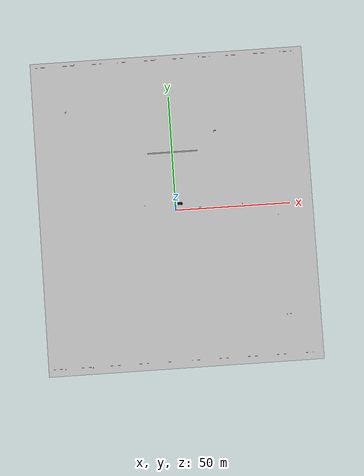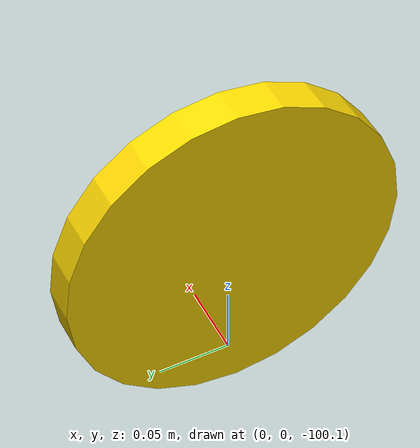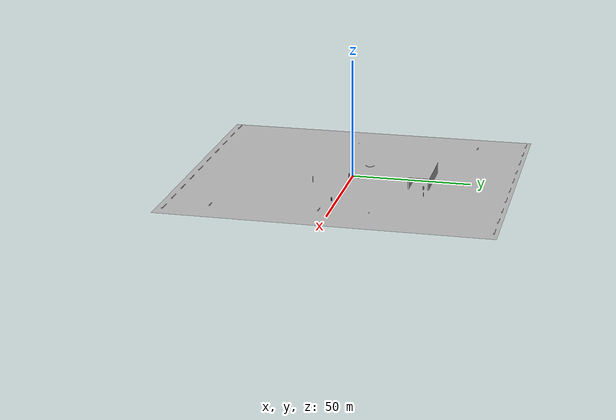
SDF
<sdf version="1.6">
 <world name="robotaksi_world">
  <plugin filename="libignition-gazebo-physics-system.so" name="ignition::gazebo::systems::Physics"/>
  <plugin filename="libignition-gazebo-user-commands-system.so" name="ignition::gazebo::systems::UserCommands"/>
  <plugin filename="libignition-gazebo-scene-broadcaster-system.so" name="ignition::gazebo::systems::SceneBroadcaster"/>
  <light type="directional" name="sun">
   <pose>0 0 10 0 0 0</pose>
   <diffuse>0.8 0.8 0.8 1</diffuse>
   <specular>0.2 0.2 0.2 1</specular>
   <direction>-0.5 0.1 -0.9</direction>
  </light>
  <model name="invisible_ground">
   <static>true</static>
   <pose>0 0 -0.01 0 0 0</pose>
   <link name="link">
    <collision name="collision"><geometry><box><size>2000 2000 0.01</size></box></geometry></collision>
   </link>
  </model>
  <include><uri>model://robotaksi_map</uri></include>
  <include>
   <uri>model://durak_sign</uri>
   <name>durak_1</name>
   <pose>29.0746 0.795691 0.0575 0 0 1.54575</pose>
  </include>
  <include><uri>model://durak_sign</uri><name>durak_2</name><pose>48.4687 16.9535 0.0575 0 0 0</pose></include>
  <include><uri>model://durak_sign</uri><name>durak_3</name><pose>11.4296 -14.644 0.0575 0 0 0</pose></include>
  <include><uri>model://traffic_light</uri><name>tl_1</name><pose>10.7719 0.6677 0 0 0 3.14159</pose></include>
  <include><uri>model://tl_lamp_red</uri><name>tl1_red</name><pose>10.0219 0.6677 4.30 0 0 0</pose></include>
  <include><uri>model://tl_lamp_yellow</uri><name>tl1_yellow</name><pose>0 0 -100 0 0 0</pose></include>
  <include><uri>model://tl_lamp_green</uri><name>tl1_green</name><pose>0 0 -100 0 0 0</pose></include>
  <include><uri>model://traffic_light</uri><name>tl_2</name><pose>18.8216 33.5324 0 0 0 0</pose></include>
  <include><uri>model://tl_lamp_red</uri><name>tl2_red</name><pose>19.5716 33.5324 4.30 0 0 0</pose></include>
  <include><uri>model://tl_lamp_yellow</uri><name>tl2_yellow</name><pose>0 0 -100 0 0 0</pose></include>
  <include><uri>model://tl_lamp_green</uri><name>tl2_green</name><pose>0 0 -100 0 0 0</pose></include>
  <include><uri>model://traffic_light</uri><name>tl_3</name><pose>40.6710 0.0121 0 0 0 3.14159</pose></include>
  <include><uri>model://tl_lamp_red</uri><name>tl3_red</name><pose>39.9210 0.0121 4.30 0 0 0</pose></include>
  <include><uri>model://tl_lamp_yellow</uri><name>tl3_yellow</name><pose>0 0 -100 0 0 0</pose></include>
  <include><uri>model://tl_lamp_green</uri><name>tl3_green</name><pose>0 0 -100 0 0 0</pose></include>
  <model name="my_robot">
   <pose>2.0 3.0 0.15 0 0 0</pose>
   <link name="base_footprint">
    <inertial>
     <pose>0.0003793929712460063 0 0.3672963258785942 0 0 0</pose>
     <mass>500.80000000000001</mass>
     <inertia>
      <ixx>71.232659225239615</ixx>
      <ixy>0</ixy>
      <ixz>-0.18956369808306711</ixz>
      <iyy>131.4130871405751</iyy>
      <iyz>0</iyz>
      <izz>150.1817279153355</izz>
     </inertia>
    </inertial>
    <collision name="base_footprint_fixed_joint_lump__base_link_collision">
     <pose>0 0 0.365 0 0 0</pose>
     <geometry><box><size>2 1.2 0.4</size></box></geometry>
    </collision>
    <collision name="base_footprint_fixed_joint_lump__camera_link_collision_1">
     <pose>0.95 0 1.365 0 0.35 0</pose>
     <geometry><box><size>0.1 0.1 0.1</size></box></geometry>
    </collision>
    <collision name="base_footprint_fixed_joint_lump__imu_link_collision_2">
     <pose>0 0 0.5650000000000001 0 0 0</pose>
     <geometry><box><size>0.05 0.05 0.05</size></box></geometry>
    </collision>
    <collision name="base_footprint_fixed_joint_lump__laser_link_collision_3">
     <pose>0 0 0.765 0 0 0</pose>
     <geometry>
      <cylinder><length>0.10000000000000001</length><radius>0.10000000000000001</radius></cylinder>
     </geometry>
    </collision>
    <visual name="base_footprint_fixed_joint_lump__base_link_visual">
     <pose>0 0 0.365 0 0 0</pose>
     <geometry><box><size>2 1.2 0.4</size></box></geometry>
     <material><diffuse>0 0 0 1</diffuse><ambient>0 0 0 1</ambient></material>
    </visual>
    <visual name="base_footprint_fixed_joint_lump__camera_gta_link_visual_1">
     <pose>0 0 15.165 0 1.570796326794897 0</pose>
     <geometry><box><size>0.05 0.05 0.05</size></box></geometry>
     <material><diffuse>0 0 0 1</diffuse><ambient>0 0 0 1</ambient></material>
    </visual>
    <visual name="base_footprint_fixed_joint_lump__camera_link_visual_2">
     <pose>0.95 0 1.365 0 0.35 0</pose>
     <geometry><box><size>0.1 0.1 0.1</size></box></geometry>
     <material><diffuse>0 0 1 1</diffuse><ambient>0 0 1 1</ambient></material>
    </visual>
    <visual name="base_footprint_fixed_joint_lump__imu_link_visual_3">
     <pose>0 0 0.5650000000000001 0 0 0</pose>
     <geometry><box><size>0.05 0.05 0.05</size></box></geometry>
     <material><diffuse>0 0 1 1</diffuse><ambient>0 0 1 1</ambient></material>
    </visual>
    <visual name="base_footprint_fixed_joint_lump__laser_link_visual_4">
     <pose>0 0 0.765 0 0 0</pose>
     <geometry>
      <cylinder><length>0.10000000000000001</length><radius>0.10000000000000001</radius></cylinder>
     </geometry>
     <material><diffuse>0.375 0.375 0.375 1</diffuse><ambient>0.375 0.375 0.375 1</ambient></material>
    </visual>
    <sensor name="gta_camera" type="camera">
     <update_rate>30</update_rate>
     <camera>
      <horizontal_fov>1.2</horizontal_fov>
      <image><width>800</width><height>600</height><format>R8G8B8</format></image>
      <clip><near>0.10000000000000001</near><far>200</far></clip>
     </camera>
     <always_on>true</always_on>
     <visualize>true</visualize>
     <topic>/camera/gta_view</topic>
     <pose>0 0 15.165 0 1.5708 -0</pose>
     <frame_id>camera_gta_link</frame_id>
    </sensor>
    <sensor name="camera_sensor" type="camera">
     <update_rate>30</update_rate>
     <camera>
      <horizontal_fov>1.5707</horizontal_fov>
      <image><width>640</width><height>480</height><format>R8G8B8</format></image>
      <clip><near>0.10000000000000001</near><far>50</far></clip>
     </camera>
     <always_on>true</always_on>
     <visualize>true</visualize>
     <topic>/camera/image_raw</topic>
     <pose>0.95 0 1.365 0 0.35 0</pose>
     <frame_id>camera_link</frame_id>
    </sensor>
    <sensor name="imu_sensor" type="imu">
     <always_on>true</always_on>
     <update_rate>100</update_rate>
     <visualize>true</visualize>
     <topic>/imu/data</topic>
     <pose>0 0 0.565 0 -0 0</pose>
     <gz_frame_id>imu_link</gz_frame_id>
    </sensor>
    <sensor name="lidar" type="gpu_lidar">
     <topic>/scan</topic>
     <update_rate>10</update_rate>
     <ray>
      <scan>
       <horizontal>
        <samples>360</samples>
        <resolution>1</resolution>
        <min_angle>-3.1400000000000001</min_angle>
        <max_angle>3.1400000000000001</max_angle>
       </horizontal>
      </scan>
      <range><min>0.20000000000000001</min><max>30</max><resolution>0.01</resolution></range>
     </ray>
     <always_on>true</always_on>
     <visualize>true</visualize>
     <pose>0 0 0.765 0 -0 0</pose>
     <frame_id>laser_link</frame_id>
    </sensor>
   </link>
   <joint name="front_left_steering_joint" type="revolute">
    <pose relative_to="base_footprint">0.6 0.65 0.165 0 0 0</pose>
    <parent>base_footprint</parent>
    <child>front_left_steering_link</child>
    <axis>
     <xyz>0 0 1</xyz>
     <limit>
      <lower>-0.59999999999999998</lower>
      <upper>0.59999999999999998</upper>
      <effort>100</effort>
      <velocity>10</velocity>
     </limit>
     <dynamics><spring_reference>0</spring_reference><spring_stiffness>0</spring_stiffness></dynamics>
    </axis>
   </joint>
   <link name="front_left_steering_link">
    <pose relative_to="front_left_steering_joint">0 0 0 0 0 0</pose>
    <inertial>
     <mass>1</mass>
     <inertia><ixx>0.01</ixx><ixy>0</ixy><ixz>0</ixz><iyy>0.01</iyy><iyz>0</iyz><izz>0.01</izz></inertia>
    </inertial>
   </link>
   <joint name="front_left_wheel_joint" type="revolute">
    <pose relative_to="front_left_steering_link">0 0 0 0 0 0</pose>
    <parent>front_left_steering_link</parent>
    <child>front_left_wheel_link</child>
    <axis>
     <xyz>0 1 0</xyz>
     <limit><lower>-10000000000000000</lower><upper>10000000000000000</upper></limit>
     <dynamics><spring_reference>0</spring_reference><spring_stiffness>0</spring_stiffness></dynamics>
    </axis>
   </joint>
   <link name="front_left_wheel_link">
    <pose relative_to="front_left_wheel_joint">0 0 0 0 0 0</pose>
    <inertial>
     <mass>5</mass>
     <inertia>
      <ixx>0.068000000000000005</ixx>
      <ixy>0</ixy>
      <ixz>0</ixz>
      <iyy>0.068000000000000005</iyy>
      <iyz>0</iyz>
      <izz>0.068000000000000005</izz>
     </inertia>
    </inertial>
    <collision name="front_left_wheel_link_collision">
     <pose>0 0 0 -1.57 0 0</pose>
     <geometry>
      <cylinder><length>0.10000000000000001</length><radius>0.16500000000000001</radius></cylinder>
     </geometry>
     <surface>
      <contact><ode><kp>5000</kp><kd>80</kd><min_depth>0.01</min_depth></ode></contact>
      <friction><ode><mu>1</mu><mu2>1</mu2></ode></friction>
     </surface>
    </collision>
    <visual name="front_left_wheel_link_visual">
     <pose>0 0 0 -1.57 0 0</pose>
     <geometry>
      <cylinder><length>0.10000000000000001</length><radius>0.16500000000000001</radius></cylinder>
     </geometry>
     <material>
      <script><name>Gazebo/Blue</name><uri>file://media/materials/scripts/gazebo.material</uri></script>
      <diffuse>0 0 1 1</diffuse>
      <ambient>0 0 1 1</ambient>
     </material>
    </visual>
   </link>
   <joint name="front_right_steering_joint" type="revolute">
    <pose relative_to="base_footprint">0.6 -0.65 0.165 0 0 0</pose>
    <parent>base_footprint</parent>
    <child>front_right_steering_link</child>
    <axis>
     <xyz>0 0 1</xyz>
     <limit>
      <lower>-0.59999999999999998</lower>
      <upper>0.59999999999999998</upper>
      <effort>100</effort>
      <velocity>10</velocity>
     </limit>
     <dynamics><spring_reference>0</spring_reference><spring_stiffness>0</spring_stiffness></dynamics>
    </axis>
   </joint>
   <link name="front_right_steering_link">
    <pose relative_to="front_right_steering_joint">0 0 0 0 0 0</pose>
    <inertial>
     <mass>1</mass>
     <inertia><ixx>0.01</ixx><ixy>0</ixy><ixz>0</ixz><iyy>0.01</iyy><iyz>0</iyz><izz>0.01</izz></inertia>
    </inertial>
   </link>
   <joint name="front_right_wheel_joint" type="revolute">
    <pose relative_to="front_right_steering_link">0 0 0 0 0 0</pose>
    <parent>front_right_steering_link</parent>
    <child>front_right_wheel_link</child>
    <axis>
     <xyz>0 1 0</xyz>
     <limit><lower>-10000000000000000</lower><upper>10000000000000000</upper></limit>
     <dynamics><spring_reference>0</spring_reference><spring_stiffness>0</spring_stiffness></dynamics>
    </axis>
   </joint>
   <link name="front_right_wheel_link">
    <pose relative_to="front_right_wheel_joint">0 0 0 0 0 0</pose>
    <inertial>
     <mass>5</mass>
     <inertia>
      <ixx>0.068000000000000005</ixx>
      <ixy>0</ixy>
      <ixz>0</ixz>
      <iyy>0.068000000000000005</iyy>
      <iyz>0</iyz>
      <izz>0.068000000000000005</izz>
     </inertia>
    </inertial>
    <collision name="front_right_wheel_link_collision">
     <pose>0 0 0 1.57 0 0</pose>
     <geometry>
      <cylinder><length>0.10000000000000001</length><radius>0.16500000000000001</radius></cylinder>
     </geometry>
     <surface>
      <contact><ode><kp>5000</kp><kd>80</kd><min_depth>0.01</min_depth></ode></contact>
      <friction><ode><mu>1</mu><mu2>1</mu2></ode></friction>
     </surface>
    </collision>
    <visual name="front_right_wheel_link_visual">
     <pose>0 0 0 1.57 0 0</pose>
     <geometry>
      <cylinder><length>0.10000000000000001</length><radius>0.16500000000000001</radius></cylinder>
     </geometry>
     <material>
      <script><name>Gazebo/Blue</name><uri>file://media/materials/scripts/gazebo.material</uri></script>
      <diffuse>0 0 1 1</diffuse>
      <ambient>0 0 1 1</ambient>
     </material>
    </visual>
   </link>
   <joint name="rear_left_wheel_joint" type="revolute">
    <pose relative_to="base_footprint">-0.6 0.65 0.165 0 0 0</pose>
    <parent>base_footprint</parent>
    <child>rear_left_wheel_link</child>
    <axis>
     <xyz>0 1 0</xyz>
     <limit><lower>-1e16</lower><upper>1e16</upper><effort>1000</effort><velocity>50</velocity></limit>
     <dynamics>
      <spring_reference>0</spring_reference>
      <spring_stiffness>0</spring_stiffness>
      <damping>0.1</damping>
     </dynamics>
    </axis>
   </joint>
   <link name="rear_left_wheel_link">
    <pose relative_to="rear_left_wheel_joint">0 0 0 0 0 0</pose>
    <inertial>
     <mass>5</mass>
     <inertia>
      <ixx>0.068000000000000005</ixx>
      <ixy>0</ixy>
      <ixz>0</ixz>
      <iyy>0.068000000000000005</iyy>
      <iyz>0</iyz>
      <izz>0.068000000000000005</izz>
     </inertia>
    </inertial>
    <collision name="rear_left_wheel_link_collision">
     <pose>0 0 0 -1.57 0 0</pose>
     <geometry>
      <cylinder><length>0.10000000000000001</length><radius>0.16500000000000001</radius></cylinder>
     </geometry>
     <surface>
      <contact><ode><kp>5000</kp><kd>80</kd><min_depth>0.01</min_depth></ode></contact>
      <friction><ode><mu>1.5</mu><mu2>1.5</mu2></ode></friction>
     </surface>
    </collision>
    <visual name="rear_left_wheel_link_visual">
     <pose>0 0 0 -1.57 0 0</pose>
     <geometry>
      <cylinder><length>0.10000000000000001</length><radius>0.16500000000000001</radius></cylinder>
     </geometry>
     <material>
      <script><name>Gazebo/Blue</name><uri>file://media/materials/scripts/gazebo.material</uri></script>
      <diffuse>0 0 1 1</diffuse>
      <ambient>0 0 1 1</ambient>
     </material>
    </visual>
   </link>
   <joint name="rear_right_wheel_joint" type="revolute">
    <pose relative_to="base_footprint">-0.6 -0.65 0.165 0 0 0</pose>
    <parent>base_footprint</parent>
    <child>rear_right_wheel_link</child>
    <axis>
     <xyz>0 1 0</xyz>
     <limit><lower>-1e16</lower><upper>1e16</upper><effort>1000</effort><velocity>50</velocity></limit>
     <dynamics>
      <spring_reference>0</spring_reference>
      <spring_stiffness>0</spring_stiffness>
      <damping>0.1</damping>
     </dynamics>
    </axis>
   </joint>
   <link name="rear_right_wheel_link">
    <pose relative_to="rear_right_wheel_joint">0 0 0 0 0 0</pose>
    <inertial>
     <mass>5</mass>
     <inertia>
      <ixx>0.068000000000000005</ixx>
      <ixy>0</ixy>
      <ixz>0</ixz>
      <iyy>0.068000000000000005</iyy>
      <iyz>0</iyz>
      <izz>0.068000000000000005</izz>
     </inertia>
    </inertial>
    <collision name="rear_right_wheel_link_collision">
     <pose>0 0 0 1.57 0 0</pose>
     <geometry>
      <cylinder><length>0.10000000000000001</length><radius>0.16500000000000001</radius></cylinder>
     </geometry>
     <surface>
      <contact><ode><kp>5000</kp><kd>80</kd><min_depth>0.01</min_depth></ode></contact>
      <friction><ode><mu>1.5</mu><mu2>1.5</mu2></ode></friction>
     </surface>
    </collision>
    <visual name="rear_right_wheel_link_visual">
     <pose>0 0 0 1.57 0 0</pose>
     <geometry>
      <cylinder><length>0.10000000000000001</length><radius>0.16500000000000001</radius></cylinder>
     </geometry>
     <material>
      <script><name>Gazebo/Blue</name><uri>file://media/materials/scripts/gazebo.material</uri></script>
      <diffuse>0 0 1 1</diffuse>
      <ambient>0 0 1 1</ambient>
     </material>
    </visual>
   </link>
   <plugin name="ignition::gazebo::systems::VelocityControl" filename="libignition-gazebo-velocity-control-system.so">
    <topic>/model/my_robot/cmd_vel</topic>
   </plugin>
   <plugin name="ignition::gazebo::systems::Sensors" filename="libignition-gazebo-sensors-system.so">
    <render_engine>ogre2</render_engine>
   </plugin>
   <plugin name="ignition::gazebo::systems::Imu" filename="libignition-gazebo-imu-system.so"/>
   <plugin name="ignition::gazebo::systems::JointStatePublisher" filename="libignition-gazebo-joint-state-publisher-system.so">
    <topic>joint_states</topic>
   </plugin>
   <frame name="camera_gta_joint" attached_to="base_link"><pose>0 0 15 0 1.5707 0</pose></frame>
   <frame name="camera_gta_link" attached_to="camera_gta_joint"/>
   <frame name="camera_joint" attached_to="base_link"><pose>0.95 0 1.2 0 0.35 0</pose></frame>
   <frame name="camera_link" attached_to="camera_joint"/>
   <frame name="imu_joint" attached_to="base_link"><pose>0 0 0.4 0 -0 0</pose></frame>
   <frame name="imu_link" attached_to="imu_joint"/>
   <frame name="laser_joint" attached_to="base_link"><pose>0 0 0.6 0 -0 0</pose></frame>
   <frame name="laser_link" attached_to="laser_joint"/>
   <frame name="base_joint" attached_to="base_footprint"><pose>0 0 0.165 0 -0 0</pose></frame>
   <frame name="base_link" attached_to="base_joint"/>
  </model>
 </world>
</sdf>

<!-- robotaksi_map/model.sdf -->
<sdf version="1.6">
  <model name="robotaksi_map">
    <static>true</static>
    <link name="link">

      <pose>0 0 0 1.5708 0 0</pose>

      <collision name="collision">
        <geometry>
          <mesh>
            <uri>model://robotaksi_map/meshes/RobotaksiMap.obj</uri>
          </mesh>
        </geometry>
      </collision>

      <visual name="visual">
        <geometry>
          <mesh>
            <uri>model://robotaksi_map/meshes/RobotaksiMap.obj</uri>
          </mesh>
        </geometry>
      </visual>

    </link>
  </model>
</sdf>

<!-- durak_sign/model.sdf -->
<sdf version="1.6">
  <model name="durak_sign">
    <static>true</static>
    <link name="link">

      <!-- Direk -->
      <visual name="pole">
        <pose>0 0 1.0 0 0 0</pose>
        <geometry>
          <cylinder>
            <radius>0.03</radius>
            <length>2.0</length>
          </cylinder>
        </geometry>
        <material>
          <ambient>0.35 0.35 0.35 1</ambient>
          <diffuse>0.35 0.35 0.35 1</diffuse>
        </material>
      </visual>

      <!-- Tabela paneli – Durak.png dokusu, kameraya dönük (-Y yüzü güneye bakıyor) -->
      <visual name="sign_board">
        <pose>0 0 2.3 0 0 0</pose>
        <geometry>
          <box>
            <size>0.6 0.02 0.6</size>
          </box>
        </geometry>
        <material>
          <diffuse>1 1 1 1</diffuse>
          <specular>0.05 0.05 0.05 1</specular>
          <pbr>
            <metal>
              <albedo_map>model://durak_sign/Durak.png</albedo_map>
              <metalness>0.0</metalness>
              <roughness>0.8</roughness>
            </metal>
          </pbr>
        </material>
      </visual>

      <!-- Direk çarpışması -->
      <collision name="collision">
        <pose>0 0 1.0 0 0 0</pose>
        <geometry>
          <cylinder>
            <radius>0.03</radius>
            <length>2.0</length>
          </cylinder>
        </geometry>
      </collision>

    </link>
  </model>
</sdf>

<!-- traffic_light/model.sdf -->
<sdf version="1.6">
  <model name="traffic_light">
    <static>true</static>
    <link name="link">

      <!-- ══ DİREK ══ -->
      <visual name="pole">
        <pose>0 0 2.25 0 0 0</pose>
        <geometry><cylinder><radius>0.065</radius><length>4.5</length></cylinder></geometry>
        <material>
          <ambient>0.22 0.22 0.25 1</ambient>
          <diffuse>0.28 0.28 0.32 1</diffuse>
          <specular>0.5 0.5 0.5 1</specular>
        </material>
      </visual>

      <!-- Taban flanş -->
      <visual name="base_flange">
        <pose>0 0 0.04 0 0 0</pose>
        <geometry><cylinder><radius>0.14</radius><length>0.08</length></cylinder></geometry>
        <material>
          <ambient>0.18 0.18 0.20 1</ambient>
          <diffuse>0.22 0.22 0.25 1</diffuse>
        </material>
      </visual>

      <!-- Üst flanş -->
      <visual name="top_flange">
        <pose>0 0 4.42 0 0 0</pose>
        <geometry><cylinder><radius>0.09</radius><length>0.10</length></cylinder></geometry>
        <material>
          <ambient>0.20 0.20 0.22 1</ambient>
          <diffuse>0.25 0.25 0.28 1</diffuse>
        </material>
      </visual>

      <!-- ══ KOL ══ -->
      <visual name="arm">
        <pose>0.275 0 4.35 0 1.5708 0</pose>
        <geometry><cylinder><radius>0.038</radius><length>0.55</length></cylinder></geometry>
        <material>
          <ambient>0.20 0.20 0.22 1</ambient>
          <diffuse>0.25 0.25 0.28 1</diffuse>
        </material>
      </visual>

      <!-- ══ GÖVDE ══ -->
      <visual name="housing">
        <pose>0.61 0 3.875 0 0 0</pose>
        <geometry><box><size>0.22 0.44 1.35</size></box></geometry>
        <material>
          <ambient>0.05 0.05 0.05 1</ambient>
          <diffuse>0.07 0.07 0.07 1</diffuse>
          <specular>0.12 0.12 0.12 1</specular>
        </material>
      </visual>
      <visual name="housing_top">
        <pose>0.61 0 4.555 0 0 0</pose>
        <geometry><box><size>0.24 0.46 0.04</size></box></geometry>
        <material><ambient>0.04 0.04 0.04 1</ambient><diffuse>0.06 0.06 0.06 1</diffuse></material>
      </visual>
      <visual name="housing_bot">
        <pose>0.61 0 3.175 0 0 0</pose>
        <geometry><box><size>0.24 0.46 0.04</size></box></geometry>
        <material><ambient>0.04 0.04 0.04 1</ambient><diffuse>0.06 0.06 0.06 1</diffuse></material>
      </visual>

      <!-- ══ KIRMIZI LENS  z=4.30 ══ -->
      <visual name="ring_red">
        <pose>0.725 0 4.30 1.5708 0 0</pose>
        <geometry><cylinder><radius>0.138</radius><length>0.05</length></cylinder></geometry>
        <material>
          <ambient>0.20 0.02 0.02 1</ambient>
          <diffuse>0.15 0.01 0.01 1</diffuse>
        </material>
      </visual>
      <visual name="face_red">
        <pose>0.752 0 4.30 1.5708 0 0</pose>
        <geometry><cylinder><radius>0.118</radius><length>0.014</length></cylinder></geometry>
        <material>
          <ambient>0.08 0.01 0.01 1</ambient>
          <diffuse>0.06 0.00 0.00 1</diffuse>
        </material>
      </visual>
      <visual name="visor_red">
        <pose>0.700 0 4.455 0 -0.35 0</pose>
        <geometry><box><size>0.09 0.42 0.055</size></box></geometry>
        <material><ambient>0.04 0.04 0.04 1</ambient><diffuse>0.05 0.05 0.05 1</diffuse></material>
      </visual>

      <!-- ══ SARI LENS  z=3.85 ══ -->
      <visual name="ring_yellow">
        <pose>0.725 0 3.85 1.5708 0 0</pose>
        <geometry><cylinder><radius>0.138</radius><length>0.05</length></cylinder></geometry>
        <material>
          <ambient>0.20 0.16 0.02 1</ambient>
          <diffuse>0.16 0.12 0.01 1</diffuse>
        </material>
      </visual>
      <visual name="face_yellow">
        <pose>0.752 0 3.85 1.5708 0 0</pose>
        <geometry><cylinder><radius>0.118</radius><length>0.014</length></cylinder></geometry>
        <material>
          <ambient>0.12 0.09 0.01 1</ambient>
          <diffuse>0.08 0.06 0.00 1</diffuse>
        </material>
      </visual>
      <visual name="visor_yellow">
        <pose>0.700 0 4.005 0 -0.35 0</pose>
        <geometry><box><size>0.09 0.42 0.055</size></box></geometry>
        <material><ambient>0.04 0.04 0.04 1</ambient><diffuse>0.05 0.05 0.05 1</diffuse></material>
      </visual>

      <!-- ══ YEŞİL LENS  z=3.40 ══ -->
      <visual name="ring_green">
        <pose>0.725 0 3.40 1.5708 0 0</pose>
        <geometry><cylinder><radius>0.138</radius><length>0.05</length></cylinder></geometry>
        <material>
          <ambient>0.02 0.20 0.04 1</ambient>
          <diffuse>0.01 0.15 0.02 1</diffuse>
        </material>
      </visual>
      <visual name="face_green">
        <pose>0.752 0 3.40 1.5708 0 0</pose>
        <geometry><cylinder><radius>0.118</radius><length>0.014</length></cylinder></geometry>
        <material>
          <ambient>0.01 0.08 0.01 1</ambient>
          <diffuse>0.00 0.06 0.00 1</diffuse>
        </material>
      </visual>
      <visual name="visor_green">
        <pose>0.700 0 3.555 0 -0.35 0</pose>
        <geometry><box><size>0.09 0.42 0.055</size></box></geometry>
        <material><ambient>0.04 0.04 0.04 1</ambient><diffuse>0.05 0.05 0.05 1</diffuse></material>
      </visual>

      <!-- Çarpışma -->
      <collision name="col_pole">
        <pose>0 0 2.25 0 0 0</pose>
        <geometry><cylinder><radius>0.065</radius><length>4.5</length></cylinder></geometry>
      </collision>

    </link>
  </model>
</sdf>

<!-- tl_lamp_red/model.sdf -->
<sdf version="1.6">
  <model name="tl_lamp_red">
    <static>true</static>
    <link name="link">
      <!-- İnce disk — eksen X boyunca (0 π/2 0), sadece önden görünür -->
      <visual name="glow">
        <pose>0 0 0 0 1.5708 0</pose>
        <geometry><cylinder><radius>0.115</radius><length>0.025</length></cylinder></geometry>
        <material>
          <ambient>1.0 0.05 0.05 1</ambient>
          <diffuse>1.0 0.08 0.08 1</diffuse>
          <emissive>1.0 0.0  0.0  1</emissive>
          <specular>1.0 0.3  0.3  1</specular>
        </material>
      </visual>
    </link>
  </model>
</sdf>

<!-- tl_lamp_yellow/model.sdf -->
<sdf version="1.6">
  <model name="tl_lamp_yellow">
    <static>true</static>
    <link name="link">
      <visual name="glow">
        <pose>0 0 0 0 1.5708 0</pose>
        <geometry><cylinder><radius>0.115</radius><length>0.025</length></cylinder></geometry>
        <material>
          <ambient>1.0 0.80 0.0  1</ambient>
          <diffuse>1.0 0.85 0.0  1</diffuse>
          <emissive>1.0 0.65 0.0  1</emissive>
          <specular>1.0 0.9  0.2  1</specular>
        </material>
      </visual>
    </link>
  </model>
</sdf>

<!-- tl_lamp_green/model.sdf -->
<sdf version="1.6">
  <model name="tl_lamp_green">
    <static>true</static>
    <link name="link">
      <visual name="glow">
        <pose>0 0 0 0 1.5708 0</pose>
        <geometry><cylinder><radius>0.115</radius><length>0.025</length></cylinder></geometry>
        <material>
          <ambient>0.05 1.0  0.1  1</ambient>
          <diffuse>0.08 1.0  0.12 1</diffuse>
          <emissive>0.0  1.0  0.05 1</emissive>
          <specular>0.2  1.0  0.3  1</specular>
        </material>
      </visual>
    </link>
  </model>
</sdf>
